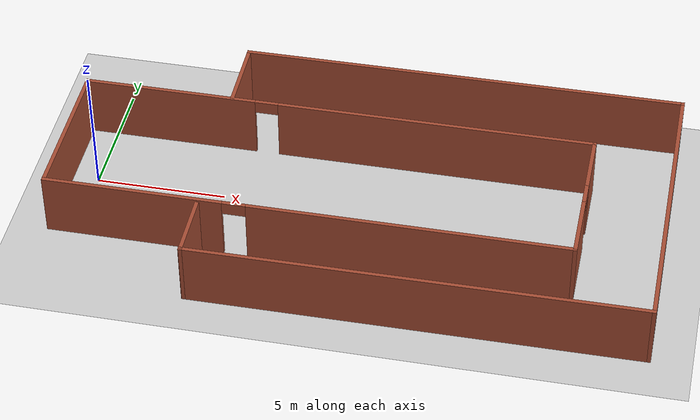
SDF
<sdf version="1.7">
 <world name="default">
  <light name="sun" type="directional">
   <pose>0 0 10 0 -0 0</pose>
   <diffuse>0.8 0.8 0.8 1</diffuse>
   <specular>0.2 0.2 0.2 1</specular>
   <attenuation>
    <range>1000</range>
    <constant>0.9</constant>
    <linear>0.01</linear>
    <quadratic>0.001</quadratic>
   </attenuation>
   <direction>-0.5 0.1 -0.9</direction>
   <spot><inner_angle>0</inner_angle><outer_angle>0</outer_angle><falloff>0</falloff></spot>
  </light>
  <model name="ground_plane">
   <static>1</static>
   <link name="link">
    <collision name="collision">
     <geometry><plane><normal>0 0 1</normal><size>100 100</size></plane></geometry>
     <surface><friction><ode><mu>100</mu><mu2>50</mu2></ode></friction></surface>
    </collision>
    <visual name="visual">
     <cast_shadows>0</cast_shadows>
     <geometry><plane><normal>0 0 1</normal><size>100 100</size></plane></geometry>
     <material>
      <script><uri>file://media/materials/scripts/gazebo.material</uri><name>Gazebo/Grey</name></script>
     </material>
    </visual>
   </link>
  </model>
  <gravity>0 0 -9.8</gravity>
  <magnetic_field>6e-06 2.3e-05 -4.2e-05</magnetic_field>
  <atmosphere type="adiabatic"/>
  <physics type="ode">
   <max_step_size>0.001</max_step_size>
   <real_time_factor>1</real_time_factor>
   <real_time_update_rate>1000</real_time_update_rate>
  </physics>
  <scene><ambient>0.4 0.4 0.4 1</ambient><background>0.7 0.7 0.7 1</background><shadows>1</shadows></scene>
  <spherical_coordinates>
   <surface_model>EARTH_WGS84</surface_model>
   <latitude_deg>0</latitude_deg>
   <longitude_deg>0</longitude_deg>
   <elevation>0</elevation>
   <heading_deg>0</heading_deg>
  </spherical_coordinates>
  <model name="Untitled">
   <pose>8.84359 -0.007935 0 0 0 -1.56968</pose>
   <link name="Wall_13">
    <collision name="Wall_13_Collision">
     <geometry><box><size>6 0.15 2.5</size></box></geometry>
     <pose>0 0 1.25 0 -0 0</pose>
    </collision>
    <visual name="Wall_13_Visual">
     <pose>0 0 1.25 0 -0 0</pose>
     <geometry><box><size>6 0.15 2.5</size></box></geometry>
     <material>
      <script><uri>file://media/materials/scripts/gazebo.material</uri><name>Gazebo/Bricks</name></script>
      <ambient>1 1 1 1</ambient>
     </material>
     <meta><layer>0</layer></meta>
    </visual>
    <pose>0 -9.925 0 0 -0 0</pose>
   </link>
   <link name="Wall_14">
    <pose>2.925 0 0 0 -0 1.5708</pose>
    <visual name="Wall_14_Visual_0">
     <pose>-6.56457 0 1.25 0 -0 0</pose>
     <geometry><box><size>6.87085 0.15 2.5</size></box></geometry>
     <material>
      <script><uri>file://media/materials/scripts/gazebo.material</uri><name>Gazebo/Bricks</name></script>
      <ambient>1 1 1 1</ambient>
     </material>
     <meta><layer>0</layer></meta>
    </visual>
    <collision name="Wall_14_Collision_0">
     <geometry><box><size>6.87085 0.15 2.5</size></box></geometry>
     <pose>-6.56457 0 1.25 0 -0 0</pose>
    </collision>
    <visual name="Wall_14_Visual_1">
     <pose>3.88543 0 1.25 0 -0 0</pose>
     <geometry><box><size>12.2291 0.15 2.5</size></box></geometry>
     <material>
      <script><uri>file://media/materials/scripts/gazebo.material</uri><name>Gazebo/Bricks</name></script>
      <ambient>1 1 1 1</ambient>
     </material>
     <meta><layer>0</layer></meta>
    </visual>
    <collision name="Wall_14_Collision_1">
     <geometry><box><size>12.2291 0.15 2.5</size></box></geometry>
     <pose>3.88543 0 1.25 0 -0 0</pose>
    </collision>
    <visual name="Wall_14_Visual_2">
     <pose>-2.67915 0 2.25 0 -0 0</pose>
     <geometry><box><size>0.9 0.15 0.5</size></box></geometry>
     <material>
      <script><uri>file://media/materials/scripts/gazebo.material</uri><name>Gazebo/Bricks</name></script>
      <ambient>1 1 1 1</ambient>
     </material>
     <meta><layer>0</layer></meta>
    </visual>
    <collision name="Wall_14_Collision_2">
     <geometry><box><size>0.9 0.15 0.5</size></box></geometry>
     <pose>-2.67915 0 2.25 0 -0 0</pose>
    </collision>
   </link>
   <link name="Wall_15">
    <pose>0 9.925 0 0 -0 3.14159</pose>
    <visual name="Wall_15_Visual_0">
     <pose>-1.67663 0 1.25 0 -0 0</pose>
     <geometry><box><size>2.64675 0.15 2.5</size></box></geometry>
     <material>
      <script><uri>file://media/materials/scripts/gazebo.material</uri><name>Gazebo/Bricks</name></script>
      <ambient>1 1 1 1</ambient>
     </material>
     <meta><layer>0</layer></meta>
    </visual>
    <collision name="Wall_15_Collision_0">
     <geometry><box><size>2.64675 0.15 2.5</size></box></geometry>
     <pose>-1.67663 0 1.25 0 -0 0</pose>
    </collision>
    <visual name="Wall_15_Visual_1">
     <pose>1.77337 0 1.25 0 -0 0</pose>
     <geometry><box><size>2.45325 0.15 2.5</size></box></geometry>
     <material>
      <script><uri>file://media/materials/scripts/gazebo.material</uri><name>Gazebo/Bricks</name></script>
      <ambient>1 1 1 1</ambient>
     </material>
     <meta><layer>0</layer></meta>
    </visual>
    <collision name="Wall_15_Collision_1">
     <geometry><box><size>2.45325 0.15 2.5</size></box></geometry>
     <pose>1.77337 0 1.25 0 -0 0</pose>
    </collision>
    <visual name="Wall_15_Visual_2">
     <pose>0.09675 0 2.25 0 -0 0</pose>
     <geometry><box><size>0.9 0.15 0.5</size></box></geometry>
     <material>
      <script><uri>file://media/materials/scripts/gazebo.material</uri><name>Gazebo/Bricks</name></script>
      <ambient>1 1 1 1</ambient>
     </material>
     <meta><layer>0</layer></meta>
    </visual>
    <collision name="Wall_15_Collision_2">
     <geometry><box><size>0.9 0.15 0.5</size></box></geometry>
     <pose>0.09675 0 2.25 0 -0 0</pose>
    </collision>
   </link>
   <link name="Wall_16">
    <pose>-2.925 0 0 0 -0 -1.5708</pose>
    <visual name="Wall_16_Visual_0">
     <pose>-3.83849 0 1.25 0 -0 0</pose>
     <geometry><box><size>12.323 0.15 2.5</size></box></geometry>
     <material>
      <script><uri>file://media/materials/scripts/gazebo.material</uri><name>Gazebo/Bricks</name></script>
      <ambient>1 1 1 1</ambient>
     </material>
     <meta><layer>0</layer></meta>
    </visual>
    <collision name="Wall_16_Collision_0">
     <geometry><box><size>12.323 0.15 2.5</size></box></geometry>
     <pose>-3.83849 0 1.25 0 -0 0</pose>
    </collision>
    <visual name="Wall_16_Visual_1">
     <pose>6.61151 0 1.25 0 -0 0</pose>
     <geometry><box><size>6.77697 0.15 2.5</size></box></geometry>
     <material>
      <script><uri>file://media/materials/scripts/gazebo.material</uri><name>Gazebo/Bricks</name></script>
      <ambient>1 1 1 1</ambient>
     </material>
     <meta><layer>0</layer></meta>
    </visual>
    <collision name="Wall_16_Collision_1">
     <geometry><box><size>6.77697 0.15 2.5</size></box></geometry>
     <pose>6.61151 0 1.25 0 -0 0</pose>
    </collision>
    <visual name="Wall_16_Visual_2">
     <pose>2.77303 0 2.25 0 -0 0</pose>
     <geometry><box><size>0.9 0.15 0.5</size></box></geometry>
     <material>
      <script><uri>file://media/materials/scripts/gazebo.material</uri><name>Gazebo/Bricks</name></script>
      <ambient>1 1 1 1</ambient>
     </material>
     <meta><layer>0</layer></meta>
    </visual>
    <collision name="Wall_16_Collision_2">
     <geometry><box><size>0.9 0.15 0.5</size></box></geometry>
     <pose>2.77303 0 2.25 0 -0 0</pose>
    </collision>
   </link>
   <static>1</static>
  </model>
  <model name="Untitled_0">
   <pose>10.9781 0.150412 0 0 0 -1.56608</pose>
   <link name="Wall_23">
    <collision name="Wall_23_Collision">
     <geometry><box><size>3 0.15 2.5</size></box></geometry>
     <pose>0 0 1.25 0 -0 0</pose>
    </collision>
    <visual name="Wall_23_Visual">
     <pose>0 0 1.25 0 -0 0</pose>
     <geometry><box><size>3 0.15 2.5</size></box></geometry>
     <material>
      <script><uri>file://media/materials/scripts/gazebo.material</uri><name>Gazebo/Bricks</name></script>
      <ambient>1 1 1 1</ambient>
     </material>
     <meta><layer>0</layer></meta>
    </visual>
    <pose>-4.2887 -6.26436 0 0 -0 3.14159</pose>
   </link>
   <link name="Wall_24">
    <collision name="Wall_24_Collision">
     <geometry><box><size>17.2852 0.15 2.5</size></box></geometry>
     <pose>0 0 1.25 0 -0 0</pose>
    </collision>
    <visual name="Wall_24_Visual">
     <pose>0 0 1.25 0 -0 0</pose>
     <geometry><box><size>17.2852 0.15 2.5</size></box></geometry>
     <material>
      <script><uri>file://media/materials/scripts/gazebo.material</uri><name>Gazebo/Bricks</name></script>
      <ambient>1 1 1 1</ambient>
     </material>
     <meta><layer>0</layer></meta>
    </visual>
    <pose>-5.71419 2.3032 0 0 -0 1.57085</pose>
   </link>
   <link name="Wall_25">
    <collision name="Wall_25_Collision">
     <geometry><box><size>11.5779 0.15 2.5</size></box></geometry>
     <pose>0 0 1.25 0 -0 0</pose>
    </collision>
    <visual name="Wall_25_Visual">
     <pose>0 0 1.25 0 -0 0</pose>
     <geometry><box><size>11.5779 0.15 2.5</size></box></geometry>
     <material>
      <script><uri>file://media/materials/scripts/gazebo.material</uri><name>Gazebo/Bricks</name></script>
      <ambient>1 1 1 1</ambient>
     </material>
     <meta><layer>0</layer></meta>
    </visual>
    <pose>-0.000744 10.8708 0 0 -0 0</pose>
   </link>
   <link name="Wall_26">
    <collision name="Wall_26_Collision">
     <geometry><box><size>17.1877 0.15 2.5</size></box></geometry>
     <pose>0 0 1.25 0 -0 0</pose>
    </collision>
    <visual name="Wall_26_Visual">
     <pose>0 0 1.25 0 -0 0</pose>
     <geometry><box><size>17.1877 0.15 2.5</size></box></geometry>
     <material>
      <script><uri>file://media/materials/scripts/gazebo.material</uri><name>Gazebo/Bricks</name></script>
      <ambient>1 1 1 1</ambient>
     </material>
     <meta><layer>0</layer></meta>
    </visual>
    <pose>5.71393 2.35192 0 0 -0 -1.57071</pose>
   </link>
   <link name="Wall_27">
    <collision name="Wall_27_Collision">
     <geometry><box><size>2.57786 0.15 2.5</size></box></geometry>
     <pose>0 0 1.25 0 -0 0</pose>
    </collision>
    <visual name="Wall_27_Visual">
     <pose>0 0 1.25 0 -0 0</pose>
     <geometry><box><size>2.57786 0.15 2.5</size></box></geometry>
     <material>
      <script><uri>file://media/materials/scripts/gazebo.material</uri><name>Gazebo/Bricks</name></script>
      <ambient>1 1 1 1</ambient>
     </material>
     <meta><layer>0</layer></meta>
    </visual>
    <pose>4.50074 -6.16692 0 0 -0 3.14159</pose>
   </link>
   <static>1</static>
  </model>
  <plugin name="ActorPosesPlugin" filename="libActorPosesPlugin.so"/>
 </world>
</sdf>
